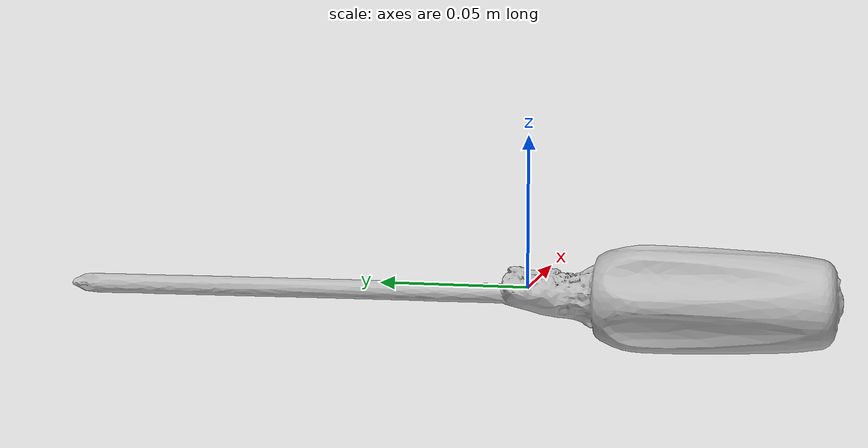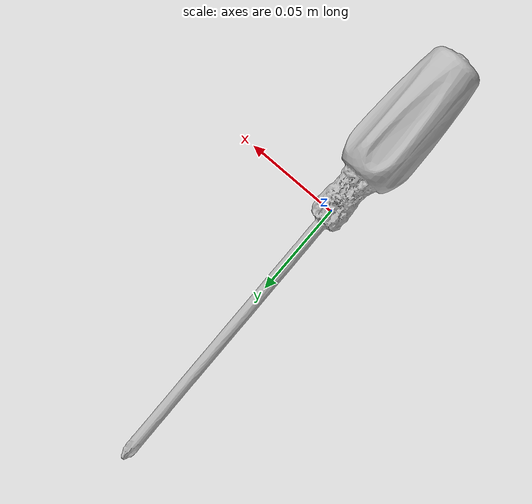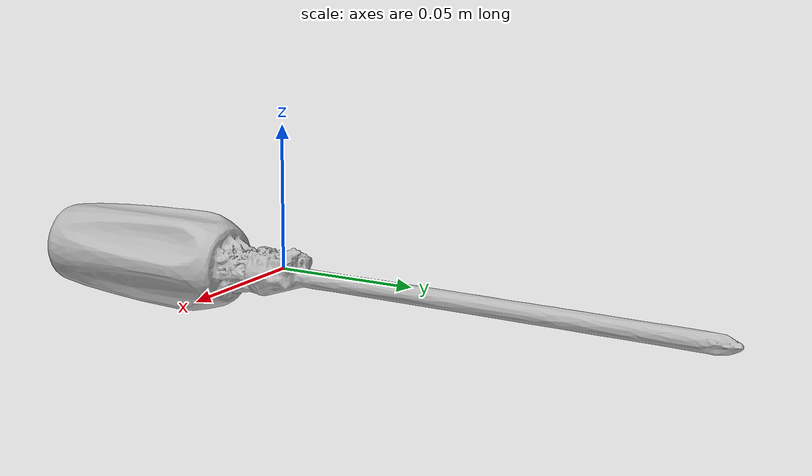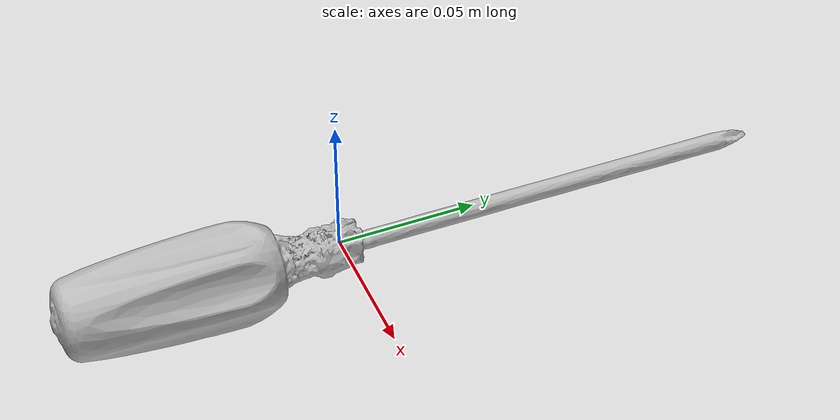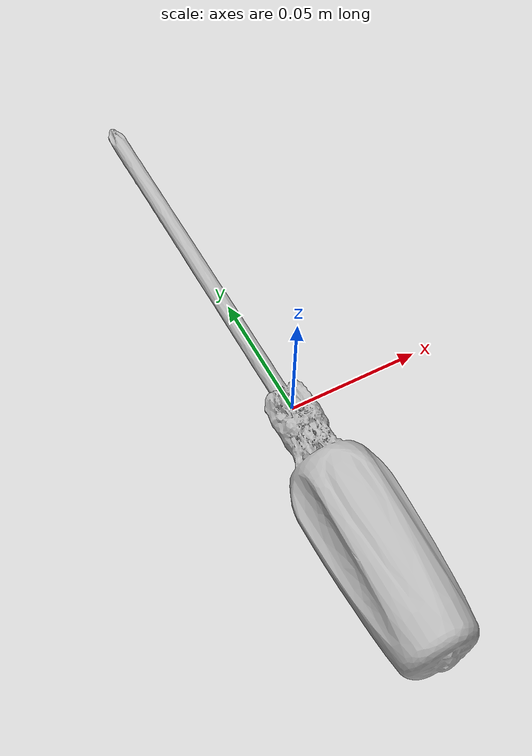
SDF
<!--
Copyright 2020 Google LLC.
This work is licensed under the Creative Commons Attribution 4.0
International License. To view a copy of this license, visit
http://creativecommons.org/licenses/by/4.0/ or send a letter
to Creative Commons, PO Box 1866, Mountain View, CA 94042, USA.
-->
<?xml version="1.0" ?>
<sdf version="1.5">
  <model name="Screwdriver">
    <static>false</static>
    <link name="link_0">
      <visual name="visual">
        <geometry>
          <mesh>
            <uri>model://Screwdriver/meshes/model.obj</uri>
          </mesh>
        </geometry>
      </visual>
      <collision name="collision_0">
        <geometry>
          <mesh>
            <uri>model://Screwdriver/meshes/model.obj</uri>
          </mesh>
        </geometry>
      </collision>
    </link>
  </model>
</sdf>
